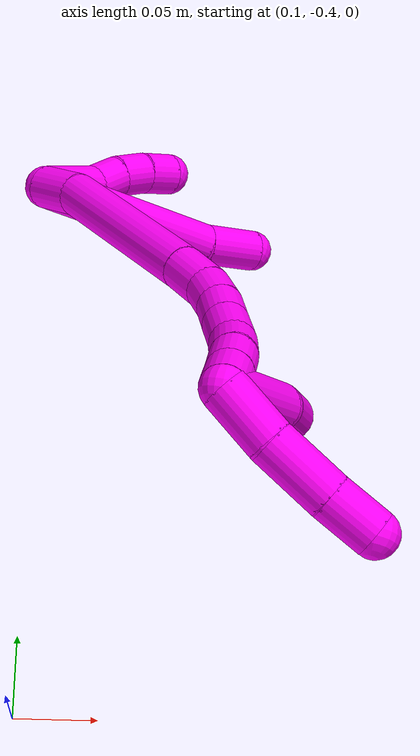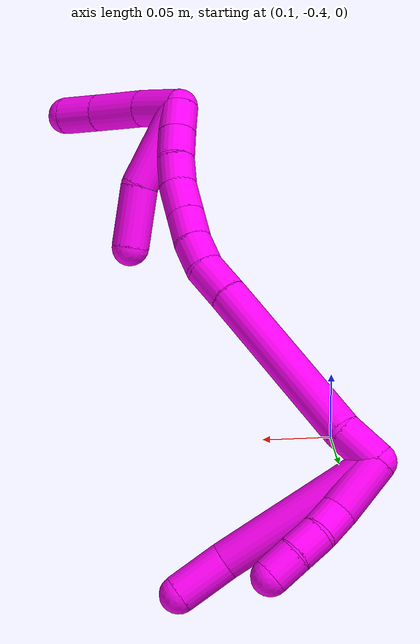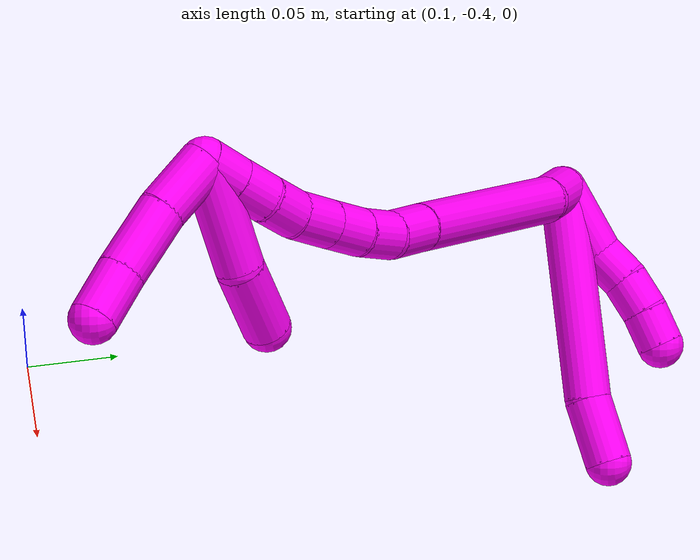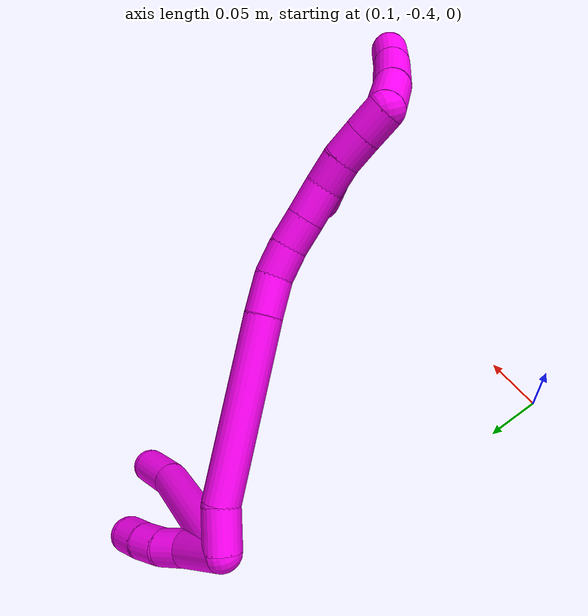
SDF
<sdf version="1.7">
 <world name="default">
  <model name="10">
   <static>0</static>
   <link name="10">
    <collision name="collision-cylinder-e_1_2_8">
     <pose>-0.054108 -0.017215 0.006286 1.22066 -1.24422 -0.929771</pose>
     <geometry><cylinder><radius>0.0125</radius><length>0.114255</length></cylinder></geometry>
     <surface>
      <friction><ode><mu>1.16</mu><mu2>1.16</mu2><slip1>0</slip1><slip2>0</slip2></ode></friction>
      <contact><ode><kp>1e+06</kp><kd>1</kd><max_vel>0</max_vel><min_depth>0.001</min_depth></ode></contact>
     </surface>
    </collision>
    <visual name="visual-cylinder-e_1_2_8">
     <pose>-0.054108 -0.017215 0.006286 1.22066 -1.24422 -0.929771</pose>
     <geometry><cylinder><radius>0.0125</radius><length>0.114255</length></cylinder></geometry>
     <material><ambient>1 0 0.964706 1</ambient></material>
    </visual>
    <collision name="collision-cylinder-e_2_8_6">
     <pose>-0.124435 -0.039699 0.017921 0.777999 -1.13723 -0.512339</pose>
     <geometry><cylinder><radius>0.0125</radius><length>0.035745</length></cylinder></geometry>
     <surface>
      <friction><ode><mu>1.16</mu><mu2>1.16</mu2><slip1>0</slip1><slip2>0</slip2></ode></friction>
      <contact><ode><kp>1e+06</kp><kd>1</kd><max_vel>0</max_vel><min_depth>0.001</min_depth></ode></contact>
     </surface>
    </collision>
    <visual name="visual-cylinder-e_2_8_6">
     <pose>-0.124435 -0.039699 0.017921 0.777999 -1.13723 -0.512339</pose>
     <geometry><cylinder><radius>0.0125</radius><length>0.035745</length></cylinder></geometry>
     <material><ambient>1 0 0.964706 1</ambient></material>
    </visual>
    <collision name="collision-cylinder-e_1_2_9">
     <pose>-0.014625 -0.009506 0.009237 0.799795 -0.834501 -0.370429</pose>
     <geometry><cylinder><radius>0.0125</radius><length>0.039475</length></cylinder></geometry>
     <surface>
      <friction><ode><mu>1.16</mu><mu2>1.16</mu2><slip1>0</slip1><slip2>0</slip2></ode></friction>
      <contact><ode><kp>1e+06</kp><kd>1</kd><max_vel>0</max_vel><min_depth>0.001</min_depth></ode></contact>
     </surface>
    </collision>
    <visual name="visual-cylinder-e_1_2_9">
     <pose>-0.014625 -0.009506 0.009237 0.799795 -0.834501 -0.370429</pose>
     <geometry><cylinder><radius>0.0125</radius><length>0.039475</length></cylinder></geometry>
     <material><ambient>1 0 0.964706 1</ambient></material>
    </visual>
    <collision name="collision-cylinder-e_2_9_10">
     <pose>-0.035956 -0.021994 0.02548 0.402277 -0.722085 -0.153676</pose>
     <geometry><cylinder><radius>0.0125</radius><length>0.020295</length></cylinder></geometry>
     <surface>
      <friction><ode><mu>1.16</mu><mu2>1.16</mu2><slip1>0</slip1><slip2>0</slip2></ode></friction>
      <contact><ode><kp>1e+06</kp><kd>1</kd><max_vel>0</max_vel><min_depth>0.001</min_depth></ode></contact>
     </surface>
    </collision>
    <visual name="visual-cylinder-e_2_9_10">
     <pose>-0.035956 -0.021994 0.02548 0.402277 -0.722085 -0.153676</pose>
     <geometry><cylinder><radius>0.0125</radius><length>0.020295</length></cylinder></geometry>
     <material><ambient>1 0 0.964706 1</ambient></material>
    </visual>
    <collision name="collision-cylinder-e_3_10_11">
     <pose>-0.050631 -0.027969 0.037736 0.518292 -0.921977 -0.261841</pose>
     <geometry><cylinder><radius>0.0125</radius><length>0.020001</length></cylinder></geometry>
     <surface>
      <friction><ode><mu>1.16</mu><mu2>1.16</mu2><slip1>0</slip1><slip2>0</slip2></ode></friction>
      <contact><ode><kp>1e+06</kp><kd>1</kd><max_vel>0</max_vel><min_depth>0.001</min_depth></ode></contact>
     </surface>
    </collision>
    <visual name="visual-cylinder-e_3_10_11">
     <pose>-0.050631 -0.027969 0.037736 0.518292 -0.921977 -0.261841</pose>
     <geometry><cylinder><radius>0.0125</radius><length>0.020001</length></cylinder></geometry>
     <material><ambient>1 0 0.964706 1</ambient></material>
    </visual>
    <collision name="collision-cylinder-e_4_11_5">
     <pose>-0.067098 -0.034598 0.047093 0.724466 -0.997644 -0.407169</pose>
     <geometry><cylinder><radius>0.0125</radius><length>0.02023</length></cylinder></geometry>
     <surface>
      <friction><ode><mu>1.16</mu><mu2>1.16</mu2><slip1>0</slip1><slip2>0</slip2></ode></friction>
      <contact><ode><kp>1e+06</kp><kd>1</kd><max_vel>0</max_vel><min_depth>0.001</min_depth></ode></contact>
     </surface>
    </collision>
    <visual name="visual-cylinder-e_4_11_5">
     <pose>-0.067098 -0.034598 0.047093 0.724466 -0.997644 -0.407169</pose>
     <geometry><cylinder><radius>0.0125</radius><length>0.02023</length></cylinder></geometry>
     <material><ambient>1 0 0.964706 1</ambient></material>
    </visual>
    <collision name="collision-cylinder-e_1_2_12">
     <pose>-0.008219 0.011394 -0.003908 -1.9012 -0.598753 0.815841</pose>
     <geometry><cylinder><radius>0.0125</radius><length>0.029164</length></cylinder></geometry>
     <surface>
      <friction><ode><mu>1.16</mu><mu2>1.16</mu2><slip1>0</slip1><slip2>0</slip2></ode></friction>
      <contact><ode><kp>1e+06</kp><kd>1</kd><max_vel>0</max_vel><min_depth>0.001</min_depth></ode></contact>
     </surface>
    </collision>
    <visual name="visual-cylinder-e_1_2_12">
     <pose>-0.008219 0.011394 -0.003908 -1.9012 -0.598753 0.815841</pose>
     <geometry><cylinder><radius>0.0125</radius><length>0.029164</length></cylinder></geometry>
     <material><ambient>1 0 0.964706 1</ambient></material>
    </visual>
    <collision name="collision-cylinder-e_2_12_13">
     <pose>-0.043629 0.066993 -0.037267 -2.15851 -0.473137 0.846227</pose>
     <geometry><cylinder><radius>0.0125</radius><length>0.119346</length></cylinder></geometry>
     <surface>
      <friction><ode><mu>1.16</mu><mu2>1.16</mu2><slip1>0</slip1><slip2>0</slip2></ode></friction>
      <contact><ode><kp>1e+06</kp><kd>1</kd><max_vel>0</max_vel><min_depth>0.001</min_depth></ode></contact>
     </surface>
    </collision>
    <visual name="visual-cylinder-e_2_12_13">
     <pose>-0.043629 0.066993 -0.037267 -2.15851 -0.473137 0.846227</pose>
     <geometry><cylinder><radius>0.0125</radius><length>0.119346</length></cylinder></geometry>
     <material><ambient>1 0 0.964706 1</ambient></material>
    </visual>
    <collision name="collision-cylinder-e_3_13_14">
     <pose>-0.076915 0.120364 -0.073625 -2.21649 -0.488124 0.926368</pose>
     <geometry><cylinder><radius>0.0125</radius><length>0.025988</length></cylinder></geometry>
     <surface>
      <friction><ode><mu>1.16</mu><mu2>1.16</mu2><slip1>0</slip1><slip2>0</slip2></ode></friction>
      <contact><ode><kp>1e+06</kp><kd>1</kd><max_vel>0</max_vel><min_depth>0.001</min_depth></ode></contact>
     </surface>
    </collision>
    <visual name="visual-cylinder-e_3_13_14">
     <pose>-0.076915 0.120364 -0.073625 -2.21649 -0.488124 0.926368</pose>
     <geometry><cylinder><radius>0.0125</radius><length>0.025988</length></cylinder></geometry>
     <material><ambient>1 0 0.964706 1</ambient></material>
    </visual>
    <collision name="collision-cylinder-e_4_14_15">
     <pose>-0.085511 0.13731 -0.087336 -2.28946 -0.23748 0.514077</pose>
     <geometry><cylinder><radius>0.0125</radius><length>0.021269</length></cylinder></geometry>
     <surface>
      <friction><ode><mu>1.16</mu><mu2>1.16</mu2><slip1>0</slip1><slip2>0</slip2></ode></friction>
      <contact><ode><kp>1e+06</kp><kd>1</kd><max_vel>0</max_vel><min_depth>0.001</min_depth></ode></contact>
     </surface>
    </collision>
    <visual name="visual-cylinder-e_4_14_15">
     <pose>-0.085511 0.13731 -0.087336 -2.28946 -0.23748 0.514077</pose>
     <geometry><cylinder><radius>0.0125</radius><length>0.021269</length></cylinder></geometry>
     <material><ambient>1 0 0.964706 1</ambient></material>
    </visual>
    <collision name="collision-cylinder-e_5_15_16">
     <pose>-0.089016 0.152711 -0.101253 -2.32163 -0.095973 0.220102</pose>
     <geometry><cylinder><radius>0.0125</radius><length>0.020945</length></cylinder></geometry>
     <surface>
      <friction><ode><mu>1.16</mu><mu2>1.16</mu2><slip1>0</slip1><slip2>0</slip2></ode></friction>
      <contact><ode><kp>1e+06</kp><kd>1</kd><max_vel>0</max_vel><min_depth>0.001</min_depth></ode></contact>
     </surface>
    </collision>
    <visual name="visual-cylinder-e_5_15_16">
     <pose>-0.089016 0.152711 -0.101253 -2.32163 -0.095973 0.220102</pose>
     <geometry><cylinder><radius>0.0125</radius><length>0.020945</length></cylinder></geometry>
     <material><ambient>1 0 0.964706 1</ambient></material>
    </visual>
    <collision name="collision-cylinder-e_6_16_17">
     <pose>-0.09109 0.168892 -0.116046 -2.30217 -0.092847 0.207472</pose>
     <geometry><cylinder><radius>0.0125</radius><length>0.0231</length></cylinder></geometry>
     <surface>
      <friction><ode><mu>1.16</mu><mu2>1.16</mu2><slip1>0</slip1><slip2>0</slip2></ode></friction>
      <contact><ode><kp>1e+06</kp><kd>1</kd><max_vel>0</max_vel><min_depth>0.001</min_depth></ode></contact>
     </surface>
    </collision>
    <visual name="visual-cylinder-e_6_16_17">
     <pose>-0.09109 0.168892 -0.116046 -2.30217 -0.092847 0.207472</pose>
     <geometry><cylinder><radius>0.0125</radius><length>0.0231</length></cylinder></geometry>
     <material><ambient>1 0 0.964706 1</ambient></material>
    </visual>
    <collision name="collision-cylinder-e_7_17_18">
     <pose>-0.091341 0.18535 -0.129842 -2.22957 0.081872 -0.166625</pose>
     <geometry><cylinder><radius>0.0125</radius><length>0.020045</length></cylinder></geometry>
     <surface>
      <friction><ode><mu>1.16</mu><mu2>1.16</mu2><slip1>0</slip1><slip2>0</slip2></ode></friction>
      <contact><ode><kp>1e+06</kp><kd>1</kd><max_vel>0</max_vel><min_depth>0.001</min_depth></ode></contact>
     </surface>
    </collision>
    <visual name="visual-cylinder-e_7_17_18">
     <pose>-0.091341 0.18535 -0.129842 -2.22957 0.081872 -0.166625</pose>
     <geometry><cylinder><radius>0.0125</radius><length>0.020045</length></cylinder></geometry>
     <material><ambient>1 0 0.964706 1</ambient></material>
    </visual>
    <collision name="collision-cylinder-e_8_18_19">
     <pose>-0.088753 0.200364 -0.14282 -2.33814 0.177057 -0.411937</pose>
     <geometry><cylinder><radius>0.0125</radius><length>0.020086</length></cylinder></geometry>
     <surface>
      <friction><ode><mu>1.16</mu><mu2>1.16</mu2><slip1>0</slip1><slip2>0</slip2></ode></friction>
      <contact><ode><kp>1e+06</kp><kd>1</kd><max_vel>0</max_vel><min_depth>0.001</min_depth></ode></contact>
     </surface>
    </collision>
    <visual name="visual-cylinder-e_8_18_19">
     <pose>-0.088753 0.200364 -0.14282 -2.33814 0.177057 -0.411937</pose>
     <geometry><cylinder><radius>0.0125</radius><length>0.020086</length></cylinder></geometry>
     <material><ambient>1 0 0.964706 1</ambient></material>
    </visual>
    <collision name="collision-cylinder-e_9_19_1">
     <pose>-0.084952 0.214521 -0.156527 -2.34203 0.204069 -0.475482</pose>
     <geometry><cylinder><radius>0.0125</radius><length>0.020056</length></cylinder></geometry>
     <surface>
      <friction><ode><mu>1.16</mu><mu2>1.16</mu2><slip1>0</slip1><slip2>0</slip2></ode></friction>
      <contact><ode><kp>1e+06</kp><kd>1</kd><max_vel>0</max_vel><min_depth>0.001</min_depth></ode></contact>
     </surface>
    </collision>
    <visual name="visual-cylinder-e_9_19_1">
     <pose>-0.084952 0.214521 -0.156527 -2.34203 0.204069 -0.475482</pose>
     <geometry><cylinder><radius>0.0125</radius><length>0.020056</length></cylinder></geometry>
     <material><ambient>1 0 0.964706 1</ambient></material>
    </visual>
    <collision name="collision-cylinder-e_1_1_20">
     <pose>-0.096649 0.223095 -0.173132 -2.98577 -0.947018 2.8392</pose>
     <geometry><cylinder><radius>0.0125</radius><length>0.033829</length></cylinder></geometry>
     <surface>
      <friction><ode><mu>1.16</mu><mu2>1.16</mu2><slip1>0</slip1><slip2>0</slip2></ode></friction>
      <contact><ode><kp>1e+06</kp><kd>1</kd><max_vel>0</max_vel><min_depth>0.001</min_depth></ode></contact>
     </surface>
    </collision>
    <visual name="visual-cylinder-e_1_1_20">
     <pose>-0.096649 0.223095 -0.173132 -2.98577 -0.947018 2.8392</pose>
     <geometry><cylinder><radius>0.0125</radius><length>0.033829</length></cylinder></geometry>
     <material><ambient>1 0 0.964706 1</ambient></material>
    </visual>
    <collision name="collision-cylinder-e_2_20_21">
     <pose>-0.127255 0.225997 -0.191901 -2.99088 -1.07578 2.88982</pose>
     <geometry><cylinder><radius>0.0125</radius><length>0.038361</length></cylinder></geometry>
     <surface>
      <friction><ode><mu>1.16</mu><mu2>1.16</mu2><slip1>0</slip1><slip2>0</slip2></ode></friction>
      <contact><ode><kp>1e+06</kp><kd>1</kd><max_vel>0</max_vel><min_depth>0.001</min_depth></ode></contact>
     </surface>
    </collision>
    <visual name="visual-cylinder-e_2_20_21">
     <pose>-0.127255 0.225997 -0.191901 -2.99088 -1.07578 2.88982</pose>
     <geometry><cylinder><radius>0.0125</radius><length>0.038361</length></cylinder></geometry>
     <material><ambient>1 0 0.964706 1</ambient></material>
    </visual>
    <collision name="collision-cylinder-e_3_21_4">
     <pose>-0.156686 0.228642 -0.206754 -2.92638 -1.126 2.80256</pose>
     <geometry><cylinder><radius>0.0125</radius><length>0.027811</length></cylinder></geometry>
     <surface>
      <friction><ode><mu>1.16</mu><mu2>1.16</mu2><slip1>0</slip1><slip2>0</slip2></ode></friction>
      <contact><ode><kp>1e+06</kp><kd>1</kd><max_vel>0</max_vel><min_depth>0.001</min_depth></ode></contact>
     </surface>
    </collision>
    <visual name="visual-cylinder-e_3_21_4">
     <pose>-0.156686 0.228642 -0.206754 -2.92638 -1.126 2.80256</pose>
     <geometry><cylinder><radius>0.0125</radius><length>0.027811</length></cylinder></geometry>
     <material><ambient>1 0 0.964706 1</ambient></material>
    </visual>
    <collision name="collision-cylinder-e_1_1_22">
     <pose>-0.102434 0.200971 -0.156402 1.24443 -0.731514 -0.536177</pose>
     <geometry><cylinder><radius>0.0125</radius><length>0.058426</length></cylinder></geometry>
     <surface>
      <friction><ode><mu>1.16</mu><mu2>1.16</mu2><slip1>0</slip1><slip2>0</slip2></ode></friction>
      <contact><ode><kp>1e+06</kp><kd>1</kd><max_vel>0</max_vel><min_depth>0.001</min_depth></ode></contact>
     </surface>
    </collision>
    <visual name="visual-cylinder-e_1_1_22">
     <pose>-0.102434 0.200971 -0.156402 1.24443 -0.731514 -0.536177</pose>
     <geometry><cylinder><radius>0.0125</radius><length>0.058426</length></cylinder></geometry>
     <material><ambient>1 0 0.964706 1</ambient></material>
    </visual>
    <collision name="collision-cylinder-e_2_22_3">
     <pose>-0.130251 0.161961 -0.144538 1.31102 -0.410892 -0.317771</pose>
     <geometry><cylinder><radius>0.0125</radius><length>0.041574</length></cylinder></geometry>
     <surface>
      <friction><ode><mu>1.16</mu><mu2>1.16</mu2><slip1>0</slip1><slip2>0</slip2></ode></friction>
      <contact><ode><kp>1e+06</kp><kd>1</kd><max_vel>0</max_vel><min_depth>0.001</min_depth></ode></contact>
     </surface>
    </collision>
    <visual name="visual-cylinder-e_2_22_3">
     <pose>-0.130251 0.161961 -0.144538 1.31102 -0.410892 -0.317771</pose>
     <geometry><cylinder><radius>0.0125</radius><length>0.041574</length></cylinder></geometry>
     <material><ambient>1 0 0.964706 1</ambient></material>
    </visual>
    <collision name="collision-sphere-3">
     <pose>-0.138554 0.143544 -0.139643 0 -0 0</pose>
     <geometry><sphere><radius>0.0125</radius></sphere></geometry>
     <surface>
      <friction><ode><mu>1.16</mu><mu2>1.16</mu2><slip1>0</slip1><slip2>0</slip2></ode></friction>
      <contact><ode><kp>1e+06</kp><kd>1</kd><max_vel>0</max_vel><min_depth>0.001</min_depth></ode></contact>
     </surface>
    </collision>
    <visual name="visual-sphere-3">
     <pose>-0.138554 0.143544 -0.139643 0 -0 0</pose>
     <geometry><sphere><radius>0.0125</radius></sphere></geometry>
     <material><ambient>1 0 0.964706 1</ambient></material>
    </visual>
    <collision name="collision-sphere-22">
     <pose>-0.121948 0.180379 -0.149433 0 -0 0</pose>
     <geometry><sphere><radius>0.0125</radius></sphere></geometry>
     <surface>
      <friction><ode><mu>1.16</mu><mu2>1.16</mu2><slip1>0</slip1><slip2>0</slip2></ode></friction>
      <contact><ode><kp>1e+06</kp><kd>1</kd><max_vel>0</max_vel><min_depth>0.001</min_depth></ode></contact>
     </surface>
    </collision>
    <visual name="visual-sphere-22">
     <pose>-0.121948 0.180379 -0.149433 0 -0 0</pose>
     <geometry><sphere><radius>0.0125</radius></sphere></geometry>
     <material><ambient>1 0 0.964706 1</ambient></material>
    </visual>
    <collision name="collision-sphere-4">
     <pose>-0.169238 0.22992 -0.212599 0 -0 0</pose>
     <geometry><sphere><radius>0.0125</radius></sphere></geometry>
     <surface>
      <friction><ode><mu>1.16</mu><mu2>1.16</mu2><slip1>0</slip1><slip2>0</slip2></ode></friction>
      <contact><ode><kp>1e+06</kp><kd>1</kd><max_vel>0</max_vel><min_depth>0.001</min_depth></ode></contact>
     </surface>
    </collision>
    <visual name="visual-sphere-4">
     <pose>-0.169238 0.22992 -0.212599 0 -0 0</pose>
     <geometry><sphere><radius>0.0125</radius></sphere></geometry>
     <material><ambient>1 0 0.964706 1</ambient></material>
    </visual>
    <collision name="collision-sphere-21">
     <pose>-0.144133 0.227365 -0.200909 0 -0 0</pose>
     <geometry><sphere><radius>0.0125</radius></sphere></geometry>
     <surface>
      <friction><ode><mu>1.16</mu><mu2>1.16</mu2><slip1>0</slip1><slip2>0</slip2></ode></friction>
      <contact><ode><kp>1e+06</kp><kd>1</kd><max_vel>0</max_vel><min_depth>0.001</min_depth></ode></contact>
     </surface>
    </collision>
    <visual name="visual-sphere-21">
     <pose>-0.144133 0.227365 -0.200909 0 -0 0</pose>
     <geometry><sphere><radius>0.0125</radius></sphere></geometry>
     <material><ambient>1 0 0.964706 1</ambient></material>
    </visual>
    <collision name="collision-sphere-20">
     <pose>-0.110378 0.224629 -0.182892 0 -0 0</pose>
     <geometry><sphere><radius>0.0125</radius></sphere></geometry>
     <surface>
      <friction><ode><mu>1.16</mu><mu2>1.16</mu2><slip1>0</slip1><slip2>0</slip2></ode></friction>
      <contact><ode><kp>1e+06</kp><kd>1</kd><max_vel>0</max_vel><min_depth>0.001</min_depth></ode></contact>
     </surface>
    </collision>
    <visual name="visual-sphere-20">
     <pose>-0.110378 0.224629 -0.182892 0 -0 0</pose>
     <geometry><sphere><radius>0.0125</radius></sphere></geometry>
     <material><ambient>1 0 0.964706 1</ambient></material>
    </visual>
    <collision name="collision-sphere-11">
     <pose>-0.0586 -0.030963 0.042985 0 -0 0</pose>
     <geometry><sphere><radius>0.0125</radius></sphere></geometry>
     <surface>
      <friction><ode><mu>1.16</mu><mu2>1.16</mu2><slip1>0</slip1><slip2>0</slip2></ode></friction>
      <contact><ode><kp>1e+06</kp><kd>1</kd><max_vel>0</max_vel><min_depth>0.001</min_depth></ode></contact>
     </surface>
    </collision>
    <visual name="visual-sphere-11">
     <pose>-0.0586 -0.030963 0.042985 0 -0 0</pose>
     <geometry><sphere><radius>0.0125</radius></sphere></geometry>
     <material><ambient>1 0 0.964706 1</ambient></material>
    </visual>
    <collision name="collision-sphere-10">
     <pose>-0.042663 -0.024975 0.032487 0 -0 0</pose>
     <geometry><sphere><radius>0.0125</radius></sphere></geometry>
     <surface>
      <friction><ode><mu>1.16</mu><mu2>1.16</mu2><slip1>0</slip1><slip2>0</slip2></ode></friction>
      <contact><ode><kp>1e+06</kp><kd>1</kd><max_vel>0</max_vel><min_depth>0.001</min_depth></ode></contact>
     </surface>
    </collision>
    <visual name="visual-sphere-10">
     <pose>-0.042663 -0.024975 0.032487 0 -0 0</pose>
     <geometry><sphere><radius>0.0125</radius></sphere></geometry>
     <material><ambient>1 0 0.964706 1</ambient></material>
    </visual>
    <collision name="collision-sphere-6">
     <pose>-0.140654 -0.044969 0.02327 0 -0 0</pose>
     <geometry><sphere><radius>0.0125</radius></sphere></geometry>
     <surface>
      <friction><ode><mu>1.16</mu><mu2>1.16</mu2><slip1>0</slip1><slip2>0</slip2></ode></friction>
      <contact><ode><kp>1e+06</kp><kd>1</kd><max_vel>0</max_vel><min_depth>0.001</min_depth></ode></contact>
     </surface>
    </collision>
    <visual name="visual-sphere-6">
     <pose>-0.140654 -0.044969 0.02327 0 -0 0</pose>
     <geometry><sphere><radius>0.0125</radius></sphere></geometry>
     <material><ambient>1 0 0.964706 1</ambient></material>
    </visual>
    <collision name="collision-sphere-9">
     <pose>-0.029249 -0.019013 0.018473 0 -0 0</pose>
     <geometry><sphere><radius>0.0125</radius></sphere></geometry>
     <surface>
      <friction><ode><mu>1.16</mu><mu2>1.16</mu2><slip1>0</slip1><slip2>0</slip2></ode></friction>
      <contact><ode><kp>1e+06</kp><kd>1</kd><max_vel>0</max_vel><min_depth>0.001</min_depth></ode></contact>
     </surface>
    </collision>
    <visual name="visual-sphere-9">
     <pose>-0.029249 -0.019013 0.018473 0 -0 0</pose>
     <geometry><sphere><radius>0.0125</radius></sphere></geometry>
     <material><ambient>1 0 0.964706 1</ambient></material>
    </visual>
    <collision name="collision-sphere-2">
     <geometry><sphere><radius>0.0125</radius></sphere></geometry>
     <surface>
      <friction><ode><mu>1.16</mu><mu2>1.16</mu2><slip1>0</slip1><slip2>0</slip2></ode></friction>
      <contact><ode><kp>1e+06</kp><kd>1</kd><max_vel>0</max_vel><min_depth>0.001</min_depth></ode></contact>
     </surface>
    </collision>
    <visual name="visual-sphere-2">
     <geometry><sphere><radius>0.0125</radius></sphere></geometry>
     <material><ambient>1 0 0.964706 1</ambient></material>
    </visual>
    <collision name="collision-sphere-19">
     <pose>-0.086984 0.207479 -0.149682 0 -0 0</pose>
     <geometry><sphere><radius>0.0125</radius></sphere></geometry>
     <surface>
      <friction><ode><mu>1.16</mu><mu2>1.16</mu2><slip1>0</slip1><slip2>0</slip2></ode></friction>
      <contact><ode><kp>1e+06</kp><kd>1</kd><max_vel>0</max_vel><min_depth>0.001</min_depth></ode></contact>
     </surface>
    </collision>
    <visual name="visual-sphere-19">
     <pose>-0.086984 0.207479 -0.149682 0 -0 0</pose>
     <geometry><sphere><radius>0.0125</radius></sphere></geometry>
     <material><ambient>1 0 0.964706 1</ambient></material>
    </visual>
    <collision name="collision-sphere-8">
     <pose>-0.108216 -0.034429 0.012573 0 -0 0</pose>
     <geometry><sphere><radius>0.0125</radius></sphere></geometry>
     <surface>
      <friction><ode><mu>1.16</mu><mu2>1.16</mu2><slip1>0</slip1><slip2>0</slip2></ode></friction>
      <contact><ode><kp>1e+06</kp><kd>1</kd><max_vel>0</max_vel><min_depth>0.001</min_depth></ode></contact>
     </surface>
    </collision>
    <visual name="visual-sphere-8">
     <pose>-0.108216 -0.034429 0.012573 0 -0 0</pose>
     <geometry><sphere><radius>0.0125</radius></sphere></geometry>
     <material><ambient>1 0 0.964706 1</ambient></material>
    </visual>
    <collision name="collision-sphere-5">
     <pose>-0.075597 -0.038233 0.0512 0 -0 0</pose>
     <geometry><sphere><radius>0.0125</radius></sphere></geometry>
     <surface>
      <friction><ode><mu>1.16</mu><mu2>1.16</mu2><slip1>0</slip1><slip2>0</slip2></ode></friction>
      <contact><ode><kp>1e+06</kp><kd>1</kd><max_vel>0</max_vel><min_depth>0.001</min_depth></ode></contact>
     </surface>
    </collision>
    <visual name="visual-sphere-5">
     <pose>-0.075597 -0.038233 0.0512 0 -0 0</pose>
     <geometry><sphere><radius>0.0125</radius></sphere></geometry>
     <material><ambient>1 0 0.964706 1</ambient></material>
    </visual>
    <collision name="collision-sphere-12">
     <pose>-0.016437 0.022788 -0.007816 0 -0 0</pose>
     <geometry><sphere><radius>0.0125</radius></sphere></geometry>
     <surface>
      <friction><ode><mu>1.16</mu><mu2>1.16</mu2><slip1>0</slip1><slip2>0</slip2></ode></friction>
      <contact><ode><kp>1e+06</kp><kd>1</kd><max_vel>0</max_vel><min_depth>0.001</min_depth></ode></contact>
     </surface>
    </collision>
    <visual name="visual-sphere-12">
     <pose>-0.016437 0.022788 -0.007816 0 -0 0</pose>
     <geometry><sphere><radius>0.0125</radius></sphere></geometry>
     <material><ambient>1 0 0.964706 1</ambient></material>
    </visual>
    <collision name="collision-sphere-13">
     <pose>-0.070821 0.111198 -0.066719 0 -0 0</pose>
     <geometry><sphere><radius>0.0125</radius></sphere></geometry>
     <surface>
      <friction><ode><mu>1.16</mu><mu2>1.16</mu2><slip1>0</slip1><slip2>0</slip2></ode></friction>
      <contact><ode><kp>1e+06</kp><kd>1</kd><max_vel>0</max_vel><min_depth>0.001</min_depth></ode></contact>
     </surface>
    </collision>
    <visual name="visual-sphere-13">
     <pose>-0.070821 0.111198 -0.066719 0 -0 0</pose>
     <geometry><sphere><radius>0.0125</radius></sphere></geometry>
     <material><ambient>1 0 0.964706 1</ambient></material>
    </visual>
    <collision name="collision-sphere-14">
     <pose>-0.083009 0.12953 -0.080531 0 -0 0</pose>
     <geometry><sphere><radius>0.0125</radius></sphere></geometry>
     <surface>
      <friction><ode><mu>1.16</mu><mu2>1.16</mu2><slip1>0</slip1><slip2>0</slip2></ode></friction>
      <contact><ode><kp>1e+06</kp><kd>1</kd><max_vel>0</max_vel><min_depth>0.001</min_depth></ode></contact>
     </surface>
    </collision>
    <visual name="visual-sphere-14">
     <pose>-0.083009 0.12953 -0.080531 0 -0 0</pose>
     <geometry><sphere><radius>0.0125</radius></sphere></geometry>
     <material><ambient>1 0 0.964706 1</ambient></material>
    </visual>
    <collision name="collision-sphere-15">
     <pose>-0.088012 0.14509 -0.094141 0 -0 0</pose>
     <geometry><sphere><radius>0.0125</radius></sphere></geometry>
     <surface>
      <friction><ode><mu>1.16</mu><mu2>1.16</mu2><slip1>0</slip1><slip2>0</slip2></ode></friction>
      <contact><ode><kp>1e+06</kp><kd>1</kd><max_vel>0</max_vel><min_depth>0.001</min_depth></ode></contact>
     </surface>
    </collision>
    <visual name="visual-sphere-15">
     <pose>-0.088012 0.14509 -0.094141 0 -0 0</pose>
     <geometry><sphere><radius>0.0125</radius></sphere></geometry>
     <material><ambient>1 0 0.964706 1</ambient></material>
    </visual>
    <collision name="collision-sphere-16">
     <pose>-0.090019 0.160333 -0.108365 0 -0 0</pose>
     <geometry><sphere><radius>0.0125</radius></sphere></geometry>
     <surface>
      <friction><ode><mu>1.16</mu><mu2>1.16</mu2><slip1>0</slip1><slip2>0</slip2></ode></friction>
      <contact><ode><kp>1e+06</kp><kd>1</kd><max_vel>0</max_vel><min_depth>0.001</min_depth></ode></contact>
     </surface>
    </collision>
    <visual name="visual-sphere-16">
     <pose>-0.090019 0.160333 -0.108365 0 -0 0</pose>
     <geometry><sphere><radius>0.0125</radius></sphere></geometry>
     <material><ambient>1 0 0.964706 1</ambient></material>
    </visual>
    <collision name="collision-sphere-17">
     <pose>-0.092161 0.177451 -0.123727 0 -0 0</pose>
     <geometry><sphere><radius>0.0125</radius></sphere></geometry>
     <surface>
      <friction><ode><mu>1.16</mu><mu2>1.16</mu2><slip1>0</slip1><slip2>0</slip2></ode></friction>
      <contact><ode><kp>1e+06</kp><kd>1</kd><max_vel>0</max_vel><min_depth>0.001</min_depth></ode></contact>
     </surface>
    </collision>
    <visual name="visual-sphere-17">
     <pose>-0.092161 0.177451 -0.123727 0 -0 0</pose>
     <geometry><sphere><radius>0.0125</radius></sphere></geometry>
     <material><ambient>1 0 0.964706 1</ambient></material>
    </visual>
    <collision name="collision-sphere-18">
     <pose>-0.090522 0.193249 -0.135957 0 -0 0</pose>
     <geometry><sphere><radius>0.0125</radius></sphere></geometry>
     <surface>
      <friction><ode><mu>1.16</mu><mu2>1.16</mu2><slip1>0</slip1><slip2>0</slip2></ode></friction>
      <contact><ode><kp>1e+06</kp><kd>1</kd><max_vel>0</max_vel><min_depth>0.001</min_depth></ode></contact>
     </surface>
    </collision>
    <visual name="visual-sphere-18">
     <pose>-0.090522 0.193249 -0.135957 0 -0 0</pose>
     <geometry><sphere><radius>0.0125</radius></sphere></geometry>
     <material><ambient>1 0 0.964706 1</ambient></material>
    </visual>
    <collision name="collision-sphere-1">
     <pose>-0.08292 0.221562 -0.163372 0 -0 0</pose>
     <geometry><sphere><radius>0.0125</radius></sphere></geometry>
     <surface>
      <friction><ode><mu>1.16</mu><mu2>1.16</mu2><slip1>0</slip1><slip2>0</slip2></ode></friction>
      <contact><ode><kp>1e+06</kp><kd>1</kd><max_vel>0</max_vel><min_depth>0.001</min_depth></ode></contact>
     </surface>
    </collision>
    <visual name="visual-sphere-1">
     <pose>-0.08292 0.221562 -0.163372 0 -0 0</pose>
     <geometry><sphere><radius>0.0125</radius></sphere></geometry>
     <material><ambient>1 0 0.964706 1</ambient></material>
    </visual>
    <inertial>
     <pose>-0.075688 0.092136 -0.069216 0 -0 0</pose>
     <mass>0.75</mass>
     <inertia>
      <ixx>0.000167</ixx>
      <ixy>0</ixy>
      <ixz>0</ixz>
      <iyy>0.000206</iyy>
      <iyz>0</iyz>
      <izz>0.000167</izz>
     </inertia>
    </inertial>
   </link>
   <pose>0.111052 -0.105595 0.109048 1.48612 -0.306964 2.95981</pose>
  </model>
 </world>
</sdf>
